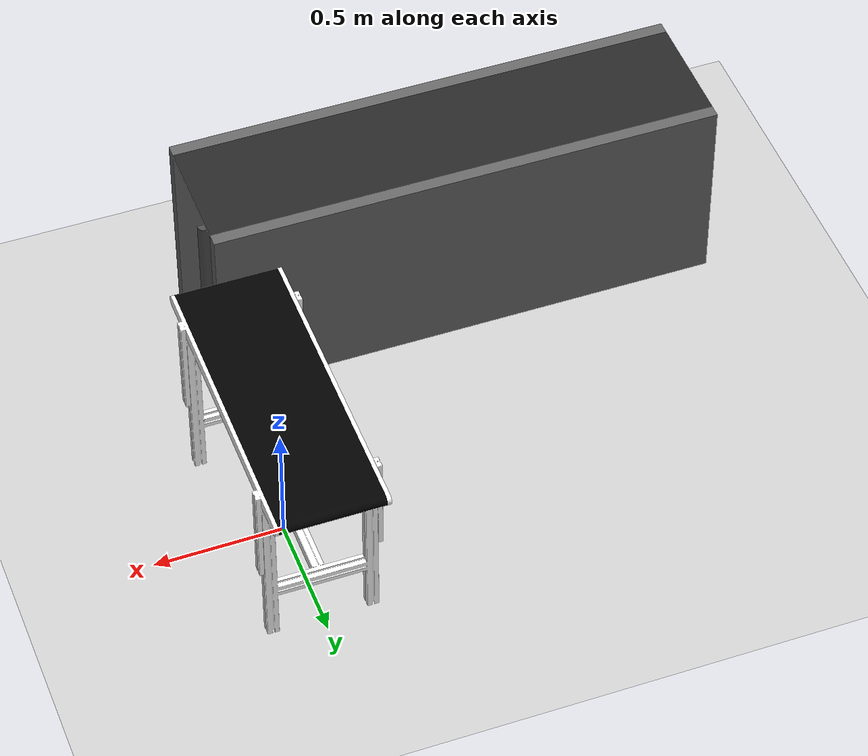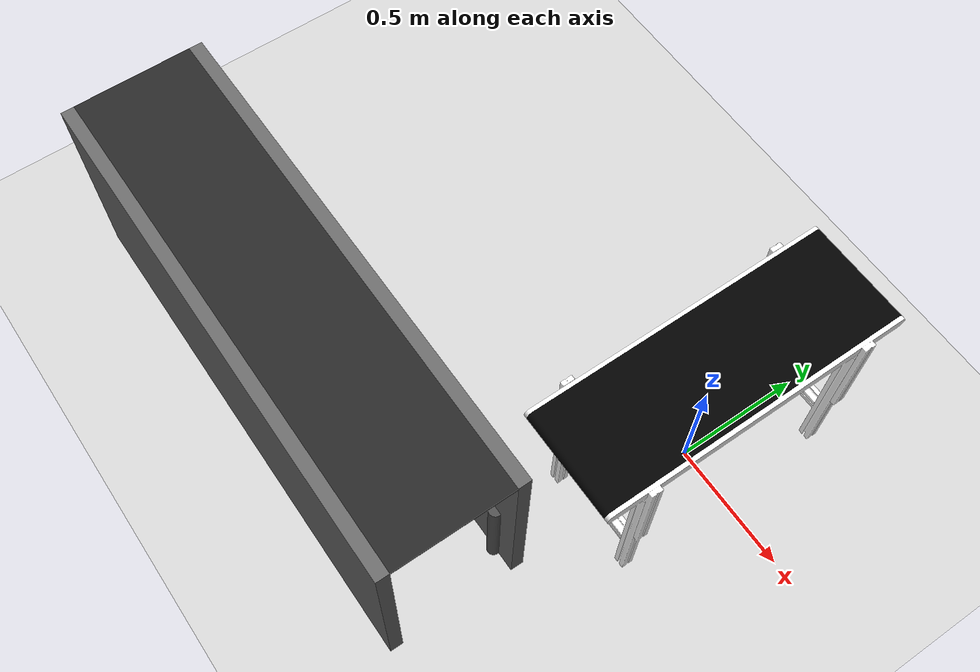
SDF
<?xml version="1.0" ?>
<sdf version="1.4">
  <world name="default">
    <gravity>0 0 -9.8</gravity>
    <include>
      <uri>model://ground_plane</uri>
    </include>
    <include>
      <uri>model://sun</uri>
    </include>
    <scene>
      <shadows>0</shadows>
    </scene>

    <!-- Publishes /gazebo/model_states so scene_publisher can track objects -->
    <plugin name="gazebo_ros_state" filename="libgazebo_ros_state.so">
      <update_rate>10.0</update_rate>
    </plugin>
    <!-- Belt 1: original, runs along Y axis at origin -->
    <include>
      <name>conveyor_belt</name>
      <pose>0 0 0 0 0 0</pose>
      <uri>model://conveyor_belt</uri>
    </include>
    <!-- Belt 2: perpendicular to belt 1, runs along X axis at (-1,-1,0) -->
    <include>
      <name>conveyor_belt_2</name>
      <pose>-1 -1 0 0 0 -1.5708</pose>
      <uri>model://conveyor_belt_2</uri>
    </include>
  </world>
</sdf>

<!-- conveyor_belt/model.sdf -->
<sdf version="1.9">

  <model name="conveyor_belt">

    <static>true</static>

    <link name="link">

      <pose>0 0 0 0 0 0</pose>

      <visual name="visual">

        <pose>0 0 0 0 0 0</pose>

        <geometry>
          <mesh>
            <uri>meshes/conveyor_belt.dae</uri>
          </mesh>
        </geometry>

      </visual>

      <collision name="collision">

        <pose>0 0 0.71 0 0 0</pose>

        <geometry>
          <box>
            <size>0.50 1.20 0.055</size>
          </box>
        </geometry>

        <surface>

          <contact>
            <ode>
              <kp>100000</kp>
              <kd>10</kd>
              <min_depth>0.001</min_depth>
              <max_vel>1.0</max_vel>
            </ode>
          </contact>

          <friction>
            <ode>

              <!--
                La cinta se mueve en el eje Y local.
              -->

              <fdir1>1 0 0</fdir1>

              <mu>2.0</mu>

              <mu2>0.5</mu2>

            </ode>
          </friction>

        </surface>

      </collision>

    </link>

    <!-- TRACK CONTROLLER                                       -->

    <plugin
      filename="gz-sim-track-controller-system"
      name="gz::sim::systems::TrackController">

      <link>link</link>

      <track_orientation>0 0 1.57079632679</track_orientation>

      <min_velocity>-1.0</min_velocity>

      <max_velocity>1.0</max_velocity>

    </plugin>

  </model>

</sdf>

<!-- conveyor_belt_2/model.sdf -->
<!--
  2-meter Conveyor Belt for Parallel Multi-Robot Assembly Line
  Length: 2 meters
  Width: 0.45 meters
  Based on IFRA-Cranfield conveyor belt plugin.
-->
<sdf version="1.6">
  <model name="conveyor_belt_2">

    <!-- Static frame/structure of the conveyor -->
    <model name="conveyorbelt_fixed">
      <static>true</static>

      <!-- Main belt structure -->
      <link name="belt_visual">
        <pose>0 0 0 0 0 0</pose>

        <!-- Belt frame - left side -->
        <visual name="frame_left">
          <pose>-0.25 0 0.4 0 0 0</pose>
          <geometry>
            <box>
              <size>0.05 2.0 0.8</size>
            </box>
          </geometry>
          <material>
            <ambient>0.3 0.3 0.3 1</ambient>
            <diffuse>0.4 0.4 0.4 1</diffuse>
          </material>
        </visual>
        <collision name="frame_left_collision">
          <pose>-0.25 0 0.4 0 0 0</pose>
          <geometry>
            <box>
              <size>0.05 2.0 0.8</size>
            </box>
          </geometry>
        </collision>

        <!-- Belt frame - right side -->
        <visual name="frame_right">
          <pose>0.25 0 0.4 0 0 0</pose>
          <geometry>
            <box>
              <size>0.05 2.0 0.8</size>
            </box>
          </geometry>
          <material>
            <ambient>0.3 0.3 0.3 1</ambient>
            <diffuse>0.4 0.4 0.4 1</diffuse>
          </material>
        </visual>
        <collision name="frame_right_collision">
          <pose>0.25 0 0.4 0 0 0</pose>
          <geometry>
            <box>
              <size>0.05 2.0 0.8</size>
            </box>
          </geometry>
        </collision>

        <!-- Legs -->
        <visual name="leg_front_left">
          <pose>-0.22 -0.9 0.2 0 0 0</pose>
          <geometry>
            <cylinder>
              <radius>0.025</radius>
              <length>0.4</length>
            </cylinder>
          </geometry>
          <material>
            <ambient>0.2 0.2 0.2 1</ambient>
            <diffuse>0.3 0.3 0.3 1</diffuse>
          </material>
        </visual>

        <visual name="leg_front_right">
          <pose>0.22 -0.9 0.2 0 0 0</pose>
          <geometry>
            <cylinder>
              <radius>0.025</radius>
              <length>0.4</length>
            </cylinder>
          </geometry>
          <material>
            <ambient>0.2 0.2 0.2 1</ambient>
            <diffuse>0.3 0.3 0.3 1</diffuse>
          </material>
        </visual>

        <visual name="leg_back_left">
          <pose>-0.22 0.9 0.2 0 0 0</pose>
          <geometry>
            <cylinder>
              <radius>0.025</radius>
              <length>0.4</length>
            </cylinder>
          </geometry>
          <material>
            <ambient>0.2 0.2 0.2 1</ambient>
            <diffuse>0.3 0.3 0.3 1</diffuse>
          </material>
        </visual>

        <visual name="leg_back_right">
          <pose>0.22 0.9 0.2 0 0 0</pose>
          <geometry>
            <cylinder>
              <radius>0.025</radius>
              <length>0.4</length>
            </cylinder>
          </geometry>
          <material>
            <ambient>0.2 0.2 0.2 1</ambient>
            <diffuse>0.3 0.3 0.3 1</diffuse>
          </material>
        </visual>

        <!-- Middle legs for support -->
        <visual name="leg_mid_left">
          <pose>-0.22 0 0.2 0 0 0</pose>
          <geometry>
            <cylinder>
              <radius>0.025</radius>
              <length>0.4</length>
            </cylinder>
          </geometry>
          <material>
            <ambient>0.2 0.2 0.2 1</ambient>
            <diffuse>0.3 0.3 0.3 1</diffuse>
          </material>
        </visual>

        <visual name="leg_mid_right">
          <pose>0.22 0 0.2 0 0 0</pose>
          <geometry>
            <cylinder>
              <radius>0.025</radius>
              <length>0.4</length>
            </cylinder>
          </geometry>
          <material>
            <ambient>0.2 0.2 0.2 1</ambient>
            <diffuse>0.3 0.3 0.3 1</diffuse>
          </material>
        </visual>

        <!-- Belt surface visual (static part) -->
        <visual name="belt_surface">
          <pose>0 0 0.795 0 0 0</pose>
          <geometry>
            <box>
              <size>0.45 2.0 0.01</size>
            </box>
          </geometry>
          <material>
            <ambient>0.1 0.1 0.1 1</ambient>
            <diffuse>0.15 0.15 0.15 1</diffuse>
          </material>
        </visual>
      </link>
    </model>

    <!-- Moving belt surface -->
    <model name="conveyorbelt_moving">
      <allow_auto_disable>0</allow_auto_disable>
      <static>false</static>
      <pose>0 0 0.8 0 0 0</pose>

      <link name="belt_moving">
        <inertial>
          <mass>50.0</mass>
          <inertia>
            <ixx>0.0</ixx>
            <ixy>0.0</ixy>
            <ixz>0.0</ixz>
            <iyy>0.0</iyy>
            <iyz>0.0</iyz>
            <izz>0.0</izz>
          </inertia>
        </inertial>

        <collision name="belt_collision">
          <geometry>
            <box>
              <size>0.42 2.0 0.00001</size>
            </box>
          </geometry>
          <surface>
            <friction>
              <ode>
                <mu>100.0</mu>
                <mu2>100.0</mu2>
              </ode>
              <torsional>
                <coefficient>1000.0</coefficient>
                <patch_radius>0.1</patch_radius>
              </torsional>
            </friction>
          </surface>
        </collision>
      </link>
    </model>

    <!-- Joint connecting moving and fixed parts -->
    <joint name="belt_joint" type="prismatic">
      <parent>conveyorbelt_fixed::belt_visual</parent>
      <child>conveyorbelt_moving::belt_moving</child>
      <axis>
        <xyz>0 1 0</xyz>
        <limit>
          <lower>0.0</lower>
          <upper>0.01</upper>
        </limit>
      </axis>
    </joint>

    <!-- ROS2 Conveyor Belt Plugin -->
    <plugin name="ros2_conveyorbelt_plugin" filename="libros2_conveyorbelt_plugin.so">
      <ros>
        <namespace>conveyor_belt_2</namespace>
      </ros>
      <max_velocity>0.5</max_velocity>
      <publish_rate>100</publish_rate>
    </plugin>

  </model>
</sdf>
